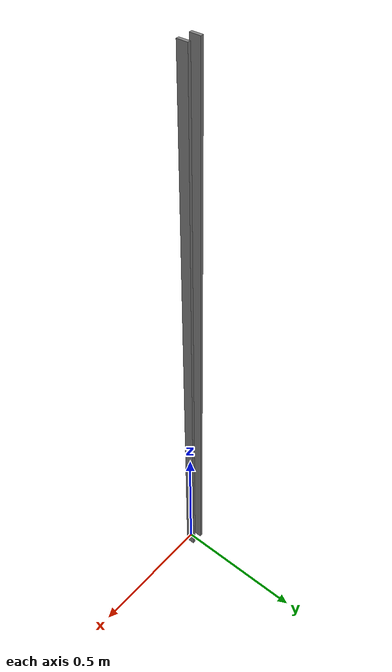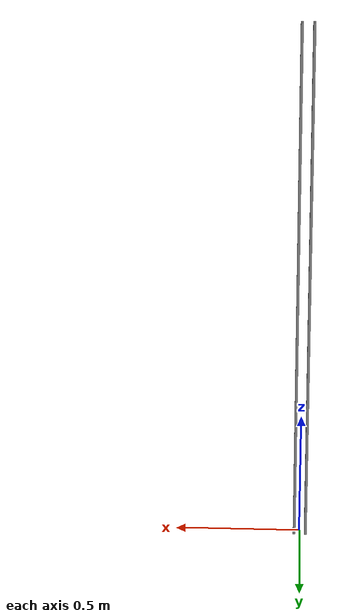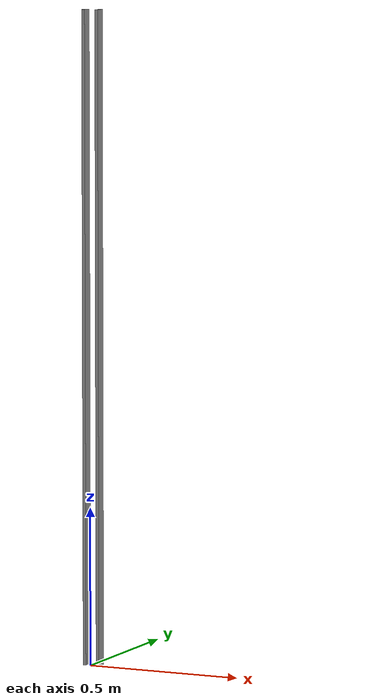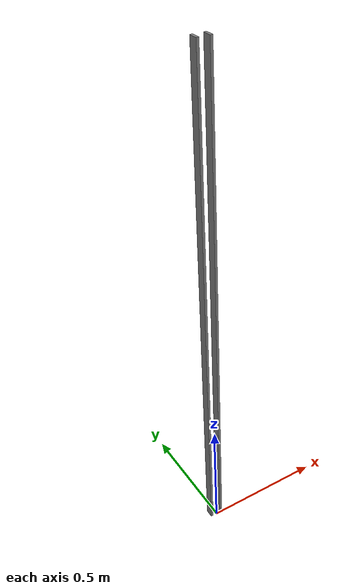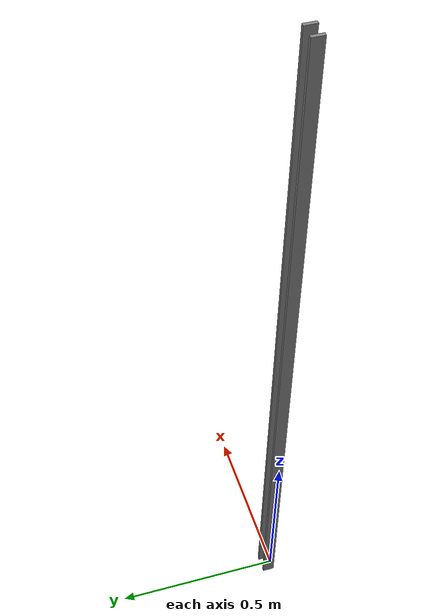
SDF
<?xml version="1.0" ?>
<sdf version="1.4">
<model name='hinged_door_stopper'>
  <link name='door_frame'>
    <pose>0 0 0 0 0 0</pose>
    <visual name='stopper'>
      <pose>0.0225 0.0175 1.025 0 0 0</pose>
      <geometry>
        <box>
          <size>0.01 0.035 2.050</size>
        </box>
      </geometry>
      <material>
        <!-- hsr_color/white -->
        <name>white</name>
        <ambient>1 1 1 1</ambient>
        <diffuse>0.5 0.5 0.5 1</diffuse>
        <specular>0 0 0 1</specular>
        <emissive>0 0 0 1</emissive>
        <shading>gouraud</shading>
        <receive_shadows>on</receive_shadows>
      </material>
    </visual>
    <collision name='collision_frame_1'>
      <pose>0.0225 0.0175 1.025 0 0 0</pose>
      <geometry>
        <box>
          <size>0.01 0.035 2.050</size>
        </box>
      </geometry>
      <max_contacts>10</max_contacts>
      <surface/>
    </collision>
    <visual name='frame_2'>
      <pose>-0.0225 0.0175 1.025 0 0 0</pose>
      <geometry>
        <box>
          <size>0.01 0.035 2.050</size>
        </box>
      </geometry>
      <material>
        <!-- hsr_color/white -->
        <name>white</name>
        <ambient>1 1 1 1</ambient>
        <diffuse>0.5 0.5 0.5 1</diffuse>
        <specular>0 0 0 1</specular>
        <emissive>0 0 0 1</emissive>
        <shading>gouraud</shading>
        <receive_shadows>on</receive_shadows>
      </material>
    </visual>
    <collision name='collision_frame_2'>
      <pose>-0.0225 0.0175 1.025 0 0 0</pose>
      <geometry>
        <box>
          <size>0.01 0.035 2.050</size>
        </box>
      </geometry>
      <max_contacts>10</max_contacts>
      <surface/>
    </collision>
  </link>
  <static>0</static>
</model>
</sdf>
